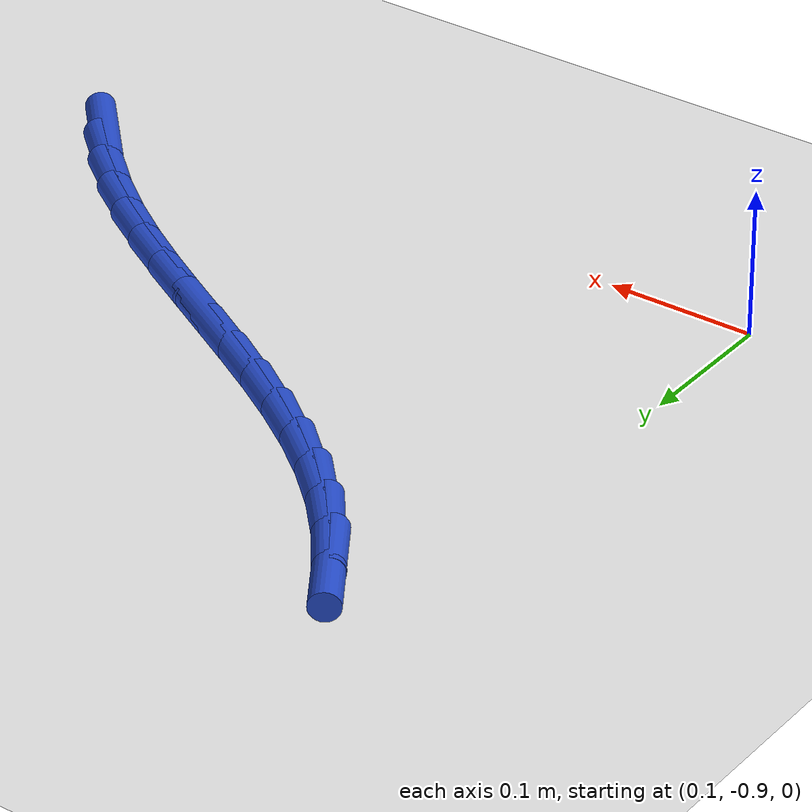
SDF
<sdf version="1.6">
 <world name="default">
  <model name="ground_plane">
   <static>1</static>
   <link name="link">
    <collision name="collision">
     <geometry><plane><normal>0 0 1</normal><size>100 100</size></plane></geometry>
     <surface><friction><ode><mu>100</mu><mu2>50</mu2></ode></friction></surface>
    </collision>
    <visual name="visual">
     <cast_shadows>0</cast_shadows>
     <geometry><plane><normal>0 0 1</normal><size>100 100</size></plane></geometry>
     <material>
      <script><uri>file://media/materials/scripts/gazebo.material</uri><name>Gazebo/WhiteGlow</name></script>
     </material>
    </visual>
   </link>
  </model>
  <model name="line">
   <link name="link_169">
    <pose>0.5631859610883879 -0.8520787651338724 0.01 0 1.57 -0.8225378443956552</pose>
    <collision name="collision">
     <geometry><cylinder><radius>0.01</radius><length>0.08</length></cylinder></geometry>
    </collision>
    <visual name="visual">
     <material>
      <script><name>Gazebo/Blue</name><uri>file://media/materials/scripts/gazebo.material</uri></script>
     </material>
     <geometry><cylinder><radius>0.01</radius><length>0.08</length></cylinder></geometry>
    </visual>
   </link>
   <link name="link_170">
    <pose>0.5393718649789413 -0.8264266651151263 0.01 0 1.57 -0.7329854482693475</pose>
    <collision name="collision">
     <geometry><cylinder><radius>0.01</radius><length>0.08</length></cylinder></geometry>
    </collision>
    <visual name="visual">
     <material>
      <script><name>Gazebo/Blue</name><uri>file://media/materials/scripts/gazebo.material</uri></script>
     </material>
     <geometry><cylinder><radius>0.01</radius><length>0.08</length></cylinder></geometry>
    </visual>
   </link>
   <link name="link_171">
    <pose>0.513425095272496 -0.8030665710594125 0.01 0 1.57 -0.6586274036931955</pose>
    <collision name="collision">
     <geometry><cylinder><radius>0.01</radius><length>0.08</length></cylinder></geometry>
    </collision>
    <visual name="visual">
     <material>
      <script><name>Gazebo/Blue</name><uri>file://media/materials/scripts/gazebo.material</uri></script>
     </material>
     <geometry><cylinder><radius>0.01</radius><length>0.08</length></cylinder></geometry>
    </visual>
   </link>
   <link name="link_172">
    <pose>0.48571285680868176 -0.7816198511308753 0.01 0 1.57 -0.5999160239229298</pose>
    <collision name="collision">
     <geometry><cylinder><radius>0.01</radius><length>0.08</length></cylinder></geometry>
    </collision>
    <visual name="visual">
     <material>
      <script><name>Gazebo/Blue</name><uri>file://media/materials/scripts/gazebo.material</uri></script>
     </material>
     <geometry><cylinder><radius>0.01</radius><length>0.08</length></cylinder></geometry>
    </visual>
   </link>
   <link name="link_173">
    <pose>0.45660235442712727 -0.7617078734936584 0.01 0 1.57 -0.5566260527349666</pose>
    <collision name="collision">
     <geometry><cylinder><radius>0.01</radius><length>0.08</length></cylinder></geometry>
    </collision>
    <visual name="visual">
     <material>
      <script><name>Gazebo/Blue</name><uri>file://media/materials/scripts/gazebo.material</uri></script>
     </material>
     <geometry><cylinder><radius>0.01</radius><length>0.08</length></cylinder></geometry>
    </visual>
   </link>
   <link name="link_174">
    <pose>0.4264607929674624 -0.7429520063119066 0.01 0 1.57 -0.5282818147524602</pose>
    <collision name="collision">
     <geometry><cylinder><radius>0.01</radius><length>0.08</length></cylinder></geometry>
    </collision>
    <visual name="visual">
     <material>
      <script><name>Gazebo/Blue</name><uri>file://media/materials/scripts/gazebo.material</uri></script>
     </material>
     <geometry><cylinder><radius>0.01</radius><length>0.08</length></cylinder></geometry>
    </visual>
   </link>
   <link name="link_175">
    <pose>0.39565537726931593 -0.724973617749763 0.01 0 1.57 -0.5144540831545107</pose>
    <collision name="collision">
     <geometry><cylinder><radius>0.01</radius><length>0.08</length></cylinder></geometry>
    </collision>
    <visual name="visual">
     <material>
      <script><name>Gazebo/Blue</name><uri>file://media/materials/scripts/gazebo.material</uri></script>
     </material>
     <geometry><cylinder><radius>0.01</radius><length>0.08</length></cylinder></geometry>
    </visual>
   </link>
   <link name="link_176">
    <pose>0.3645533121723173 -0.7073940759713728 0.01 0 1.57 -0.514934214843292</pose>
    <collision name="collision">
     <geometry><cylinder><radius>0.01</radius><length>0.08</length></cylinder></geometry>
    </collision>
    <visual name="visual">
     <material>
      <script><name>Gazebo/Blue</name><uri>file://media/materials/scripts/gazebo.material</uri></script>
     </material>
     <geometry><cylinder><radius>0.01</radius><length>0.08</length></cylinder></geometry>
    </visual>
   </link>
   <link name="link_177">
    <pose>0.33352180251609576 -0.6898347491408793 0.01 0 1.57 -0.5298137226540435</pose>
    <collision name="collision">
     <geometry><cylinder><radius>0.01</radius><length>0.08</length></cylinder></geometry>
    </collision>
    <visual name="visual">
     <material>
      <script><name>Gazebo/Blue</name><uri>file://media/materials/scripts/gazebo.material</uri></script>
     </material>
     <geometry><cylinder><radius>0.01</radius><length>0.08</length></cylinder></geometry>
    </visual>
   </link>
   <link name="link_178">
    <pose>0.3029280531402806 -0.6719170054224267 0.01 0 1.57 -0.5594872290308786</pose>
    <collision name="collision">
     <geometry><cylinder><radius>0.01</radius><length>0.08</length></cylinder></geometry>
    </collision>
    <visual name="visual">
     <material>
      <script><name>Gazebo/Blue</name><uri>file://media/materials/scripts/gazebo.material</uri></script>
     </material>
     <geometry><cylinder><radius>0.01</radius><length>0.08</length></cylinder></geometry>
    </visual>
   </link>
   <link name="link_179">
    <pose>0.2731392688845009 -0.653262212980159 0.01 0 1.57 -0.6045747950041099</pose>
    <collision name="collision">
     <geometry><cylinder><radius>0.01</radius><length>0.08</length></cylinder></geometry>
    </collision>
    <visual name="visual">
     <material>
      <script><name>Gazebo/Blue</name><uri>file://media/materials/scripts/gazebo.material</uri></script>
     </material>
     <geometry><cylinder><radius>0.01</radius><length>0.08</length></cylinder></geometry>
    </visual>
   </link>
   <link name="link_180">
    <pose>0.2445226545883862 -0.6334917399782205 0.01 0 1.57 -0.6657365452161789</pose>
    <collision name="collision">
     <geometry><cylinder><radius>0.01</radius><length>0.08</length></cylinder></geometry>
    </collision>
    <visual name="visual">
     <material>
      <script><name>Gazebo/Blue</name><uri>file://media/materials/scripts/gazebo.material</uri></script>
     </material>
     <geometry><cylinder><radius>0.01</radius><length>0.08</length></cylinder></geometry>
    </visual>
   </link>
   <link name="link_181">
    <pose>0.2174454150915655 -0.6122269545807552 0.01 0 1.57 -0.7433406353069613</pose>
    <collision name="collision">
     <geometry><cylinder><radius>0.01</radius><length>0.08</length></cylinder></geometry>
    </collision>
    <visual name="visual">
     <material>
      <script><name>Gazebo/Blue</name><uri>file://media/materials/scripts/gazebo.material</uri></script>
     </material>
     <geometry><cylinder><radius>0.01</radius><length>0.08</length></cylinder></geometry>
    </visual>
   </link>
   <link name="link_182">
    <pose>0.19227475523366833 -0.5890892249519072 0.01 0 1.57 -0.8335934285761176</pose>
    <collision name="collision">
     <geometry><cylinder><radius>0.01</radius><length>0.08</length></cylinder></geometry>
    </collision>
    <visual name="visual">
     <material>
      <script><name>Gazebo/Blue</name><uri>file://media/materials/scripts/gazebo.material</uri></script>
     </material>
     <geometry><cylinder><radius>0.01</radius><length>0.08</length></cylinder></geometry>
    </visual>
   </link>
   <link name="link_183">
    <pose>0.1693034312985771 -0.563789670284231 0.01 0 1.57 -0.9195426998957248</pose>
    <collision name="collision">
     <geometry><cylinder><radius>0.01</radius><length>0.08</length></cylinder></geometry>
    </collision>
    <visual name="visual">
     <material>
      <script><name>Gazebo/Blue</name><uri>file://media/materials/scripts/gazebo.material</uri></script>
     </material>
     <geometry><cylinder><radius>0.01</radius><length>0.08</length></cylinder></geometry>
    </visual>
   </link>
   <link name="link_184">
    <pose>0.1484742061200784 -0.5364613423620957 0.01 0 1.57 -0.9960653194682628</pose>
    <collision name="collision">
     <geometry><cylinder><radius>0.01</radius><length>0.08</length></cylinder></geometry>
    </collision>
    <visual name="visual">
     <material>
      <script><name>Gazebo/Blue</name><uri>file://media/materials/scripts/gazebo.material</uri></script>
     </material>
     <geometry><cylinder><radius>0.01</radius><length>0.08</length></cylinder></geometry>
    </visual>
   </link>
  </model>
 </world>
</sdf>
